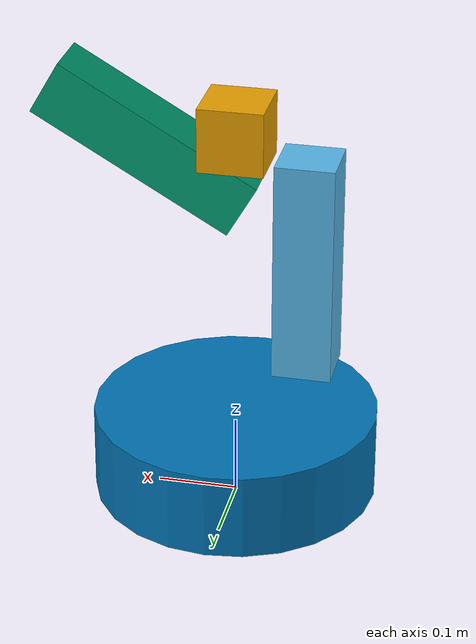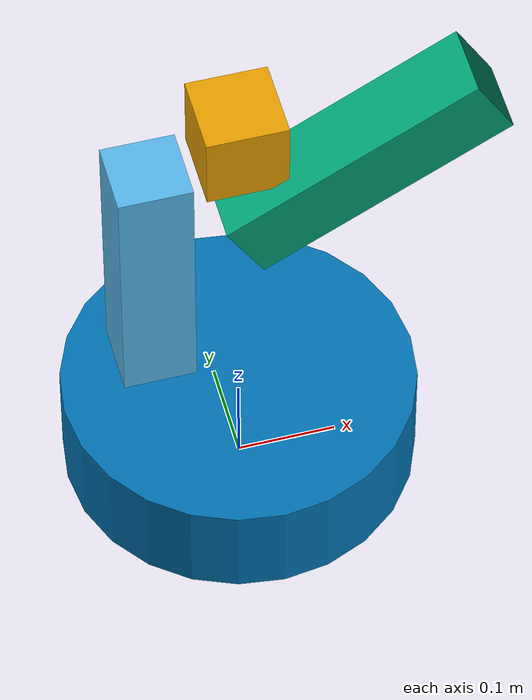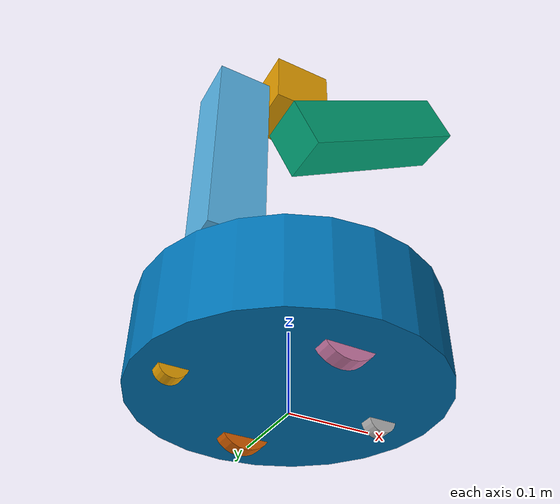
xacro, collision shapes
<?xml version="1.0"?>

<robot name="turtlebot2i" xmlns:xacro="http://ros.org/wiki/xacro">

  <xacro:property name="M_PI" value="3.1415926535897931" />

  <!-- Hokuyo LiDAR Sensor -->

  <joint name="lidar_joint" type="fixed">
    <origin xyz="0 0 0.485" rpy="0 0 0"/>
    <parent link="base_link"/>
    <child link="scan"/>
  </joint>
  <link name="scan">
    <visual>
      <origin xyz="0 0 0" rpy="0 0 0"/>
      <geometry>
        <box size="0.08 0.08 0.08"/>
      </geometry>
    </visual>
    <collision>
      <origin xyz="0.0 0.0 0.0" rpy="0 0 0"/>
      <geometry>
        <box size="0.08 0.08 0.08"/>
      </geometry>
    </collision>
    <inertial>
      <mass value="0.564" />
      <origin xyz="0 0 0" />
      <inertia ixx="0.003881243" ixy="0.0" ixz="0.0"
               iyy="0.000498940" iyz="0.0"
               izz="0.003879257" />
    </inertial>
  </link>

  <!-- Orbecc Astra Sensor -->

  <joint name="camera1_joint" type="fixed">
    <origin xyz="-0.088 0 0.32" rpy="${M_PI/2} 0 ${M_PI/2}"/>
    <parent link="base_link"/>
    <child link="camera1_link"/>
  </joint>
  <link name="camera1_link">
    <visual>
      <origin xyz="0 0 0" rpy="${-M_PI/2} 0 0"/>
      <geometry>
       <mesh filename="package://turtlebot_description/meshes/sensors/kinect.dae"/>
      </geometry>
    </visual>
    <collision>
      <origin xyz="0.0 0.0 0.0" rpy="0 0 0"/>
      <geometry>
        <box size="0.07271 0.27794 0.073"/>
      </geometry>
    </collision>
    <inertial>
      <mass value="0.564" />
      <origin xyz="0 0 0" />
      <inertia ixx="0.003881243" ixy="0.0" ixz="0.0"
               iyy="0.000498940" iyz="0.0"
               izz="0.003879257" />
    </inertial>
  </link>

  <!-- Intel RealSense Sensor -->

  <joint name="camera2_joint" type="fixed">
    <origin xyz="0.112 -0.025 0.454" rpy="${M_PI/3+M_PI/2} 0 ${M_PI/2}"/>
    <parent link="base_link"/>
    <child link="camera2_link"/>
  </joint>

  <link name="camera2_link">
    <visual>
     <origin xyz="0 0 0" rpy="${-M_PI/2} 0 0"/>
      <geometry>
       <mesh filename="package://turtlebot_description/meshes/sensors/kinect.dae"/>
      </geometry>
    </visual>
    <collision>
      <origin xyz="0.0 0.0 0.0" rpy="0 0 0"/>
      <geometry>
        <box size="0.07271 0.27794 0.073"/>
      </geometry>
    </collision>
    <inertial>
      <mass value="0.564" />
      <origin xyz="0 0 0" />
      <inertia ixx="0.003881243" ixy="0.0" ixz="0.0"
               iyy="0.000498940" iyz="0.0"
               izz="0.003879257" />
    </inertial>
  </link>

  <!-- Kobuki -->

  <link name="base_footprint"/>
  <joint name="base_joint" type="fixed">
    <origin xyz="0 0 0.0102" rpy="0 0 0" />
    <parent link="base_footprint"/>
    <child link="base_link" />
  </joint>
  <link name="base_link">
    <visual>
      <geometry>
        <!-- new mesh -->
        <mesh filename="package://kobuki_description/meshes/main_body.dae" />
      </geometry>
      <origin xyz="0.001 0 0.05199" rpy="0 0 0"/>
    </visual>
    <collision>
      <geometry>
        <cylinder length="0.10938" radius="0.178"/>
      </geometry>
      <origin xyz="0.0 0 0.05949" rpy="0 0 0"/>
    </collision>
    <inertial>
      <!-- COM experimentally determined -->
      <origin xyz="0.01 0 0"/>
      <mass value="2.4"/> <!-- 2.4/2.6 kg for small/big battery pack -->
      <inertia ixx="0.019995" ixy="0.0" ixz="0.0"
               iyy="0.019995" iyz="0.0"
               izz="0.03675" />
    </inertial>
  </link>

  <joint name="wheel_left_joint" type="continuous">
    <parent link="base_link"/>
    <child link="wheel_left_link"/>
    <origin xyz="0.00 ${0.23/2} 0.0250" rpy="${-M_PI/2} 0 0"/>
    <axis xyz="0 0 1"/>
  </joint>
  <link name="wheel_left_link">
    <visual>
      <geometry>
        <mesh filename="package://kobuki_description/meshes/wheel.dae"/>
      </geometry>
      <origin xyz="0 0 0" rpy="0 0 0"/>
    </visual>
    <collision>
      <geometry>
        <cylinder length="0.0206" radius="0.0352"/>
      </geometry>
      <origin rpy="0 0 0" xyz="0 0 0"/>
    </collision>
    <inertial>
      <mass value="0.01" />
      <origin xyz="0 0 0" />
      <inertia ixx="0.001" ixy="0.0" ixz="0.0"
               iyy="0.001" iyz="0.0"
               izz="0.001" />
    </inertial>
  </link>

  <joint name="wheel_right_joint" type="continuous">
    <parent link="base_link"/>
    <child link="wheel_right_link"/>
    <origin xyz="0.00 -${0.23/2} 0.0250" rpy="${-M_PI/2} 0 0"/>
    <axis xyz="0 0 1"/>
  </joint>
  <link name="wheel_right_link">
    <visual>
      <geometry>
        <mesh filename="package://kobuki_description/meshes/wheel.dae"/>
      </geometry>
      <origin xyz="0 0 0" rpy="0 0 0"/>
    </visual>
    <collision>
      <geometry>
        <cylinder length="0.0206" radius="0.0350"/>
      </geometry>
      <origin rpy="0 0 0" xyz="0 0 0"/>
    </collision>
    <inertial>
      <mass value="0.01" />
      <origin xyz="0 0 0" />
      <inertia ixx="0.001" ixy="0.0" ixz="0.0"
               iyy="0.001" iyz="0.0"
               izz="0.001" />
    </inertial>
  </link>

  <joint name="caster_front_joint" type="fixed">
    <parent link="base_link"/>
    <child link="caster_front_link"/>
    <origin xyz="0.115 0.0 0.007" rpy="${-M_PI/2} 0 0"/>
  </joint>
  <link name="caster_front_link">
    <collision>
      <geometry>
        <cylinder length="0.0176" radius="0.017"/>
      </geometry>
      <origin rpy="0 0 0" xyz="0 0 0"/>
    </collision>
    <inertial>
      <mass value="0.01" />
      <origin xyz="0 0 0" />
      <inertia ixx="0.001" ixy="0.0" ixz="0.0"
               iyy="0.001" iyz="0.0"
               izz="0.001" />
    </inertial>
  </link>

  <joint name="caster_back_joint" type="fixed">
    <parent link="base_link"/>
    <child link="caster_back_link"/>
    <origin xyz="-0.135 0.0 0.009" rpy="${-M_PI/2} 0 0"/>
  </joint>
  <link name="caster_back_link">
    <collision>
      <geometry>
        <cylinder length="0.0176" radius="0.017"/>
      </geometry>
      <origin rpy="0 0 0" xyz="0 0 0"/>
    </collision>
    <inertial>
      <mass value="0.01" />
      <origin xyz="0 0 0" />
      <inertia ixx="0.001" ixy="0.0" ixz="0.0"
               iyy="0.001" iyz="0.0"
               izz="0.001" />
    </inertial>
  </link>

  <!-- Kobuki's sensors -->
  <joint name="gyro_joint" type="fixed">
    <axis xyz="0 1 0"/>
    <origin xyz="0.056 0.062 0.0202" rpy="0 0 0"/>
    <parent link="base_link"/>
    <child link="gyro_link"/>
  </joint>
  <link name="gyro_link">
    <inertial>
      <mass value="0.001"/>
      <origin xyz="0 0 0" rpy="0 0 0"/>
      <inertia ixx="0.0001" ixy="0" ixz="0"
               iyy="0.000001" iyz="0"
               izz="0.0001"/>
    </inertial>
  </link>

  <joint name="cliff_sensor_left_joint" type="fixed">
    <origin xyz="0.08734 0.13601 0.0214" rpy="0 ${M_PI/2} 0" />
    <parent link="base_link"/>
    <child link="cliff_sensor_left_link" />
  </joint>
  <link name="cliff_sensor_left_link">
    <inertial>
      <mass value="0.0001" />
      <origin xyz="0 0 0" />
      <inertia ixx="0.0001" ixy="0.0" ixz="0.0"
               iyy="0.0001" iyz="0.0"
               izz="0.0001" />
    </inertial>
  </link>

  <joint name="cliff_sensor_right_joint" type="fixed">
    <origin xyz="0.085 -0.13601 0.0214" rpy="0 ${M_PI/2} 0" />
    <parent link="base_link"/>
    <child link="cliff_sensor_right_link" />
  </joint>
  <link name="cliff_sensor_right_link">
    <inertial>
      <mass value="0.0001" />
      <origin xyz="0 0 0" />
      <inertia ixx="0.0001" ixy="0.0" ixz="0.0"
               iyy="0.0001" iyz="0.0"
               izz="0.0001" />
    </inertial>
  </link>

  <joint name="cliff_sensor_front_joint" type="fixed">
    <origin xyz="0.156 0.00 0.0214" rpy="0 ${M_PI/2} 0" />
    <parent link="base_link"/>
    <child link="cliff_sensor_front_link" />
  </joint>
  <link name="cliff_sensor_front_link">
    <inertial>
      <mass value="0.0001" />
      <origin xyz="0 0 0" />
      <inertia ixx="0.0001" ixy="0.0" ixz="0.0"
               iyy="0.0001" iyz="0.0"
               izz="0.0001" />
    </inertial>
  </link>

</robot>
